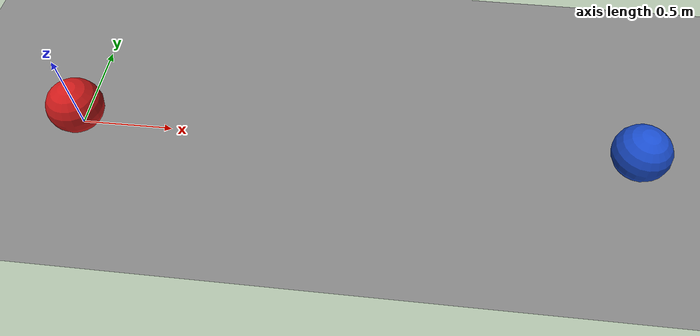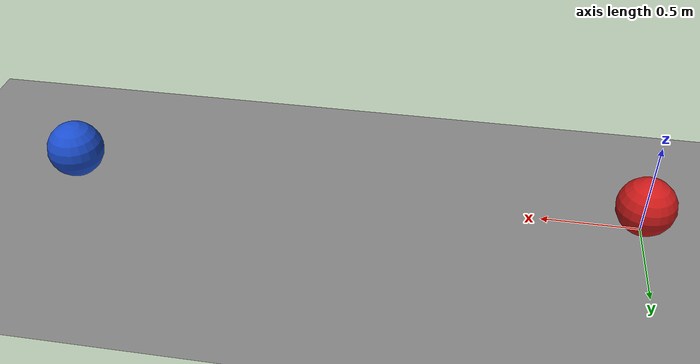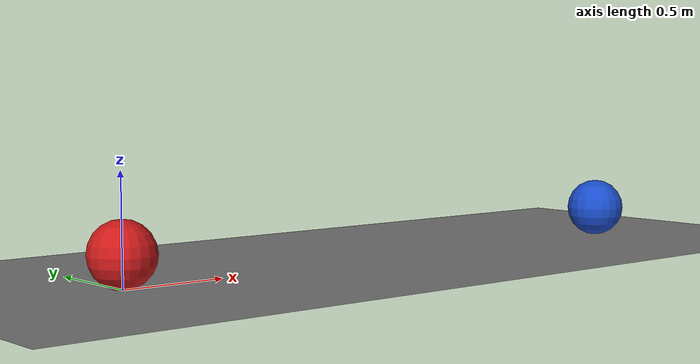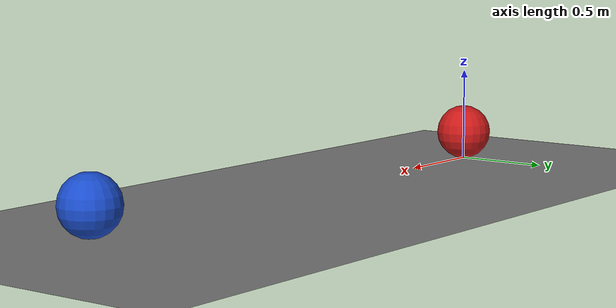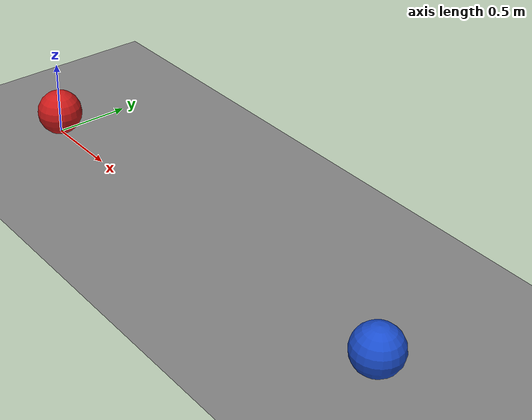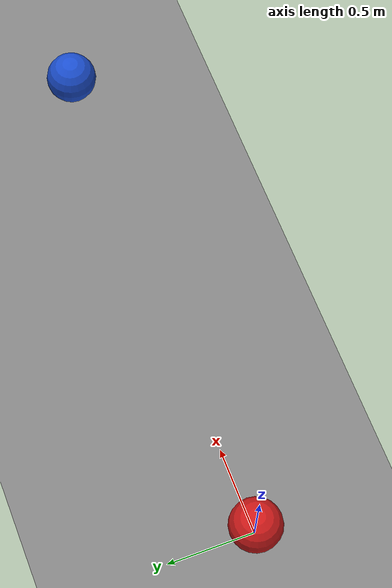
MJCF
<mujoco model="collision">
  <option timestep="0.002" gravity="0 0 -9.81"/>
  <visual>
    <global offwidth="1280" offheight="720"/>
  </visual>

  <default>
    <geom friction="0.6 0.005 0.03" solref="0.01 1"/>
  </default>

  <worldbody>
    <light diffuse="0.8 0.8 0.8" pos="4 0 4" dir="0 0 -1"/>

    <geom name="floor" type="plane" size="9 3 0.1" pos="4 0 0" rgba="0.5 0.5 0.5 1"/>

    <body name="ball" pos="0 0 0.15">
      <freejoint/>
      <geom name="ball_geom" type="sphere" size="0.15" mass="0.5" rgba="0.8 0.1 0.1 1"
            condim="6"/>
    </body>

    <body name="target" pos="3 0 0.15">
      <freejoint/>
      <geom name="target_geom" type="sphere" size="0.15" mass="0.5" rgba="0.1 0.3 0.8 1"
            condim="6"/>
    </body>
  </worldbody>

  <keyframe>
    <key name="break" qpos="0 0 0.15 1 0 0 0   3 0 0.15 1 0 0 0"
                      qvel="3.5 0 0 0 0 0      0 0 0 0 0 0"/>
  </keyframe>
</mujoco>
